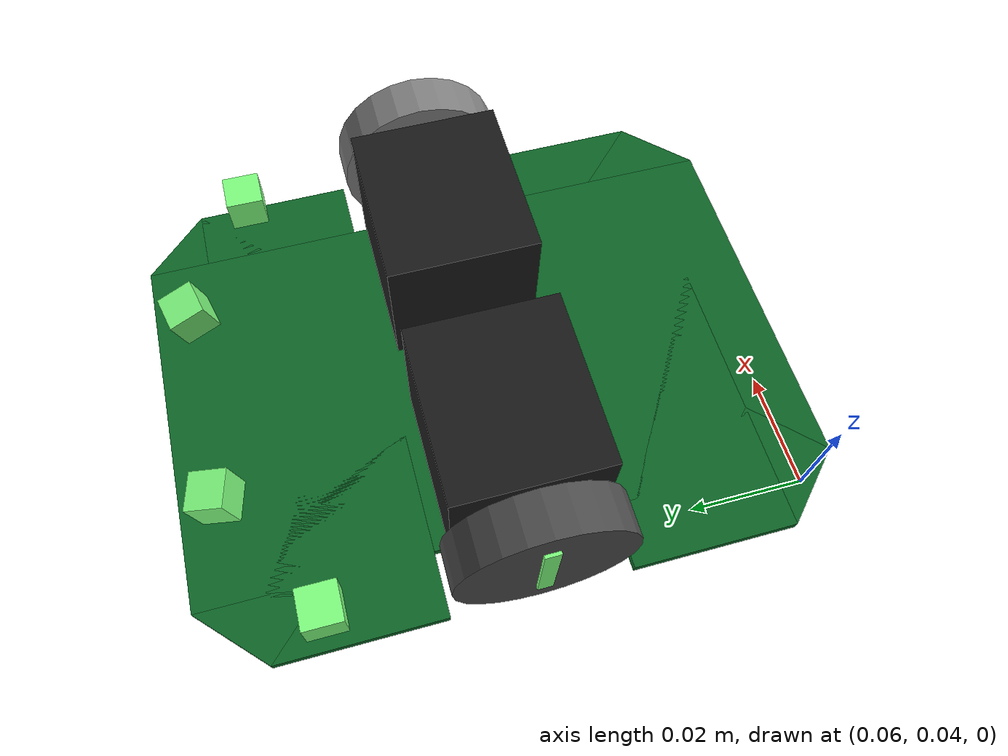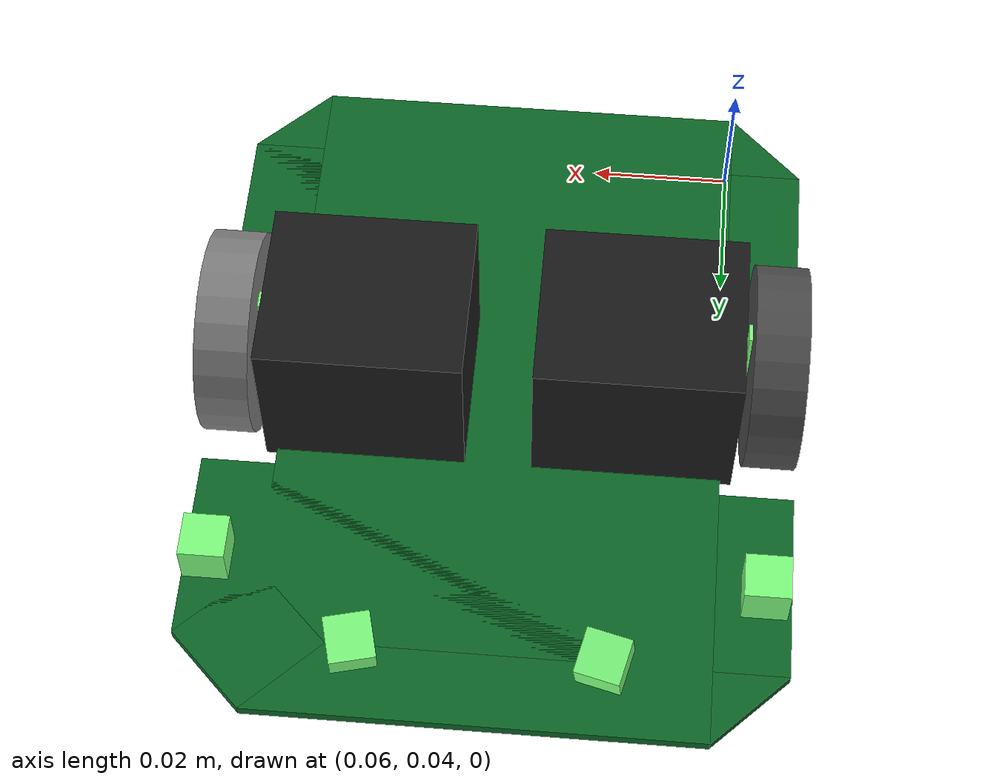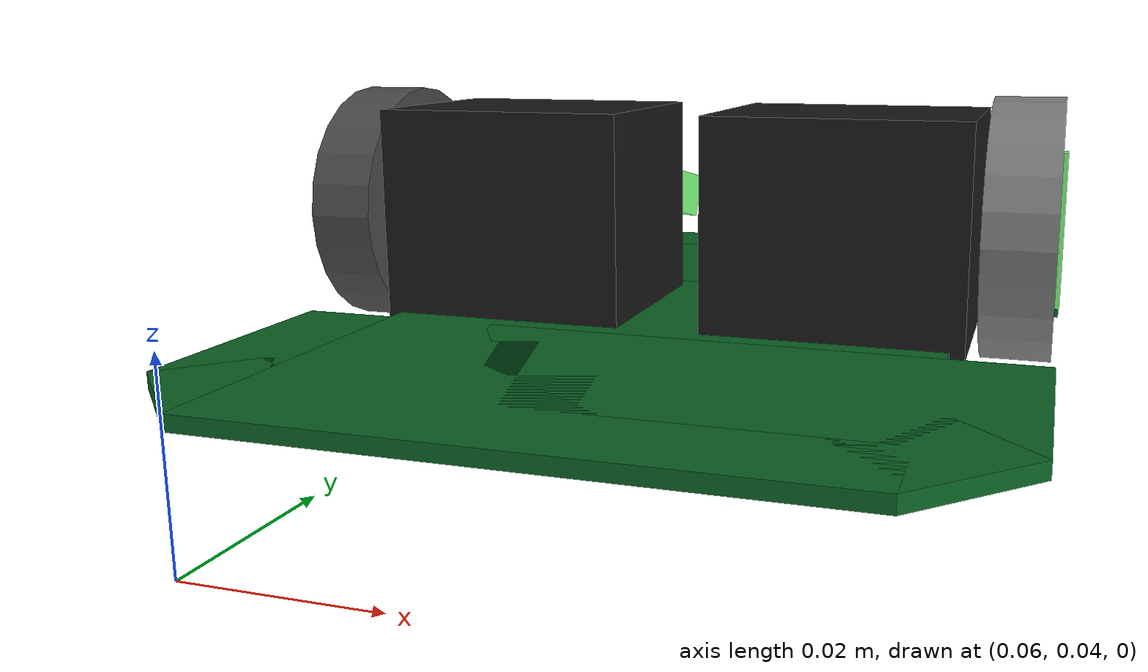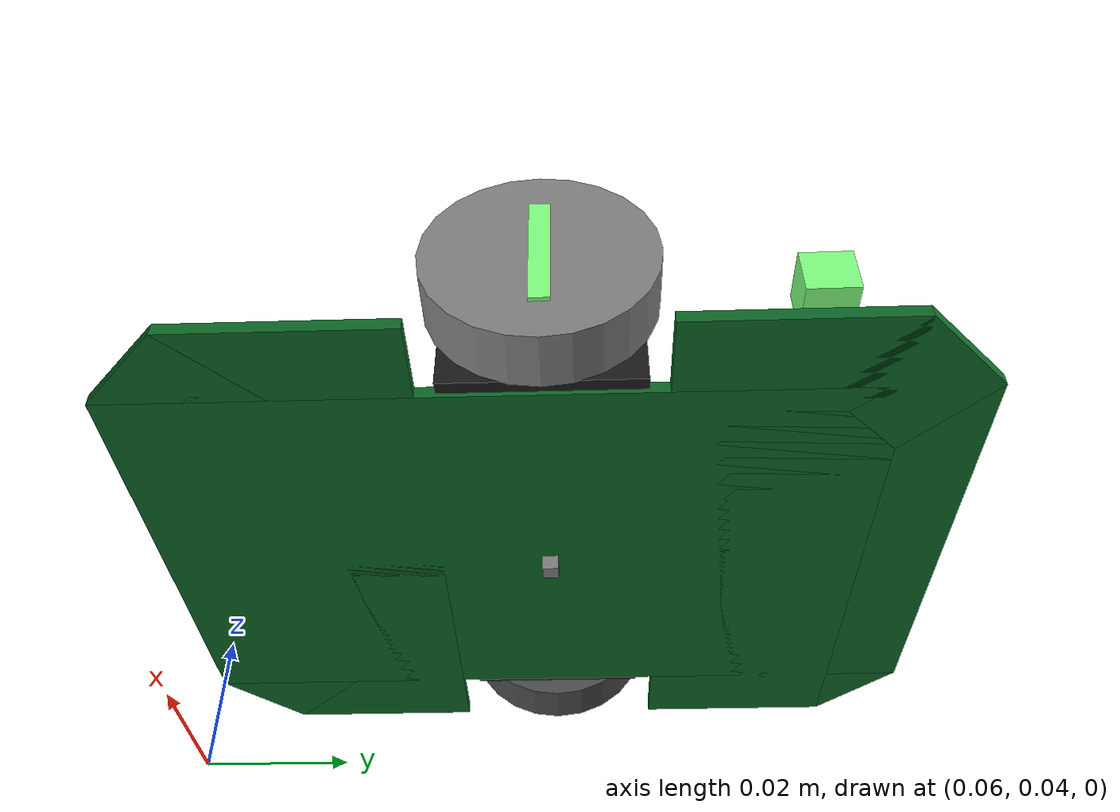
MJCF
<mujoco model="micromouse">
<option>
        <flag sensornoise="enable"/>
    </option>
    <worldbody>
        <light diffuse=".5 .5 .5" pos="0 0 10" dir="0 0 -1"/>

         <body pos="0.09 0.09 0.012" euler="0 0 90">
            <freejoint />
            <body name="torso">
                <geom name="mein_body1" type="box" friction="0.0 0.0 0.0" size="0.05 0.03 0.0008" rgba="0.05 0.4 0.15 1" pos="0 0 0.002" mass="4.65e-3"/>
                <geom name="mein_body_chip1" type="box" friction="0.0 0.0 0.0" size="0.00707 0.00707 0.0008" rgba="0.05 0.4 0.15 1" pos="0.04 0.03 0.002" euler="0 0 45" mass="4.65e-3"/>
                <geom name="mein_body_chip2" type="box" friction="0.0 0.0 0.0" size="0.00707 0.00707 0.0008" rgba="0.05 0.4 0.15 1" pos="0.04 -0.03 0.002" euler="0 0 45" mass="4.65e-3"/>
                <geom name="mein_body_chip3" type="box" friction="0.0 0.0 0.0" size="0.00707 0.00707 0.0008" rgba="0.05 0.4 0.15 1" pos="-0.04 0.03 0.002" euler="0 0 45" mass="4.65e-3"/>
                <geom name="mein_body_chip4" type="box" friction="0.0 0.0 0.0" size="0.00707 0.00707 0.0008" rgba="0.05 0.4 0.15 1" pos="-0.04 -0.03 0.002" euler="0 0 45" mass="4.65e-3"/>
                <geom name="mein_body4" type="box" friction="0.0 0.0 0.0" size="0.013 0.04 0.0008"  rgba="0.05 0.4 0.15 1" pos="-0.027 0 0.002" mass="4.65e-3"/>
                <geom name="mein_body5" type="box" friction="0.0 0.0 0.0" size="0.013 0.04 0.0008"  rgba="0.05 0.4 0.15 1" pos="0.027 0 0.002" mass="4.65e-3"/>
                <!--接触判定領域（この中に入ってるgeomが接触すると，センサ値としてその値を取得できる）-->
                <site name = "hit_box1" type = "box" size = "0.02 0.043 0.0008" pos="0.032 0 0.002" rgba="1 1 0 0.0"/>
                <site name = "hit_box2" type = "box" size = "0.02 0.043 0.0008" pos="-0.032 0 0.002" rgba="1 1 0 0.0"/>
            </body>

            <site name="sensor_left_front" type="box" size="0.003 0.003 0.003" pos="0.031 0.036 0.01" zaxis="1 0 0.01" rgba=".5 1 .5 1"/>
              <!-- zaxisの３つめ　0.1でちょい上向き -->
            <site name="sensor_left_side" type="box" size="0.003 0.003 0.003" pos="0.043 0.016 0.01" zaxis="0.25 1 0" rgba=".5 1 .5 1"/>
            <site name="sensor_right_front" type="box" size="0.003 0.003 0.003" pos="0.031 -0.036 0.01" zaxis="1 0 0.01" rgba=".5 1 .5 1"/>
            <site name="sensor_right_side" type="box" size="0.003 0.003 0.003" pos="0.043 -0.016 0.01" zaxis="0.25 -1 0" rgba=".5 1 .5 1"/>
            <site name="accerometer" type="sphere" size="0.001 0.001" pos="0 0 0.0"/>
            <site name="gyro" type="box" size="0.001 0.001 0.001" pos="0 0 0"/>
            <site name="velocimeter" type="box" size="0.001 0.001 0.001" pos="0 0 0"/>

             <body name="left wheel" pos="-0.0 0.036 0.0135" zaxis="0 1 0">
                <joint name="left wheel joint" type="hinge" axis="0 0 1" limited="false" damping='9.6e-5' />
                <geom name="left_wheel" type="cylinder" size="0.0135 0.0035" friction="1.0 0 0"  rgba=".3 .3 0.3 1" mass="5e-3"/>
                <site type="box" size = "0.0012 0.008 0.004" rgba=".5 1 .5 1"/>
            </body>

            <body name="right wheel" pos="-0.0 -0.036 0.0135" zaxis="0 1 0">
                <joint name="right wheel joint" type="hinge" axis="0 0 1" limited="false" damping='9.6e-5' />
                <geom type="cylinder" size="0.0135 0.0035" friction="1.0 0 0" mass="5e-3"/> #直径27mmのタイヤ
                <site type="box" size = "0.0012 0.008 0.004" rgba=".5 1 .5 1"/>
            </body>

            <body name="motorbox1" pos="0 -0.018 0.0135" >
                <geom type="box" size="0.0117 0.0135 0.0117" rgba="0.1 0.1 0.1 1" mass="50e-3"/>
            </body>

            <body name="motorbox2" pos="0 0.018 0.0135">
                <geom type="box" size="0.0117 0.0135 0.0117" rgba="0.1 0.1 0.1 1" mass="50e-3"/>
            </body>

            <!--トラッキングカメラを装着-->
            <camera name="camera_name" mode="track" pos="-0.4 0 0.8" euler="0 -30 -90" fovy="60"/>

        </body>
    </worldbody>

    <actuator>
        <motor name="right" joint="right wheel joint" gear="9.0e-3" ctrllimited="true" ctrlrange="-3 3"/> ctrlrangeで入力の値の範囲を決められる
        <motor name="left"  joint="left wheel joint"  gear="9.0e-3" ctrllimited="true" ctrlrange="-3 3"/>
    </actuator>

    <sensor>
        <rangefinder name="LF" site="sensor_left_front" cutoff="0.15"/>
        <rangefinder name="LS" site="sensor_left_side" cutoff="0.15"/>
        <rangefinder name="RF" site="sensor_right_front" cutoff="0.15"/>
        <rangefinder name="RS" site="sensor_right_side" cutoff="0.15"/>
        <touch name = "HB1" site = "hit_box1"/>
        <touch name = "HB2" site = "hit_box2"/>
        <accelerometer name="Accel" site="accerometer"/>
        <gyro name="Gyro" site="gyro" noise="0.001"/>
        <velocimeter name="Veloci" site="velocimeter"/>
    </sensor>

</mujoco>
